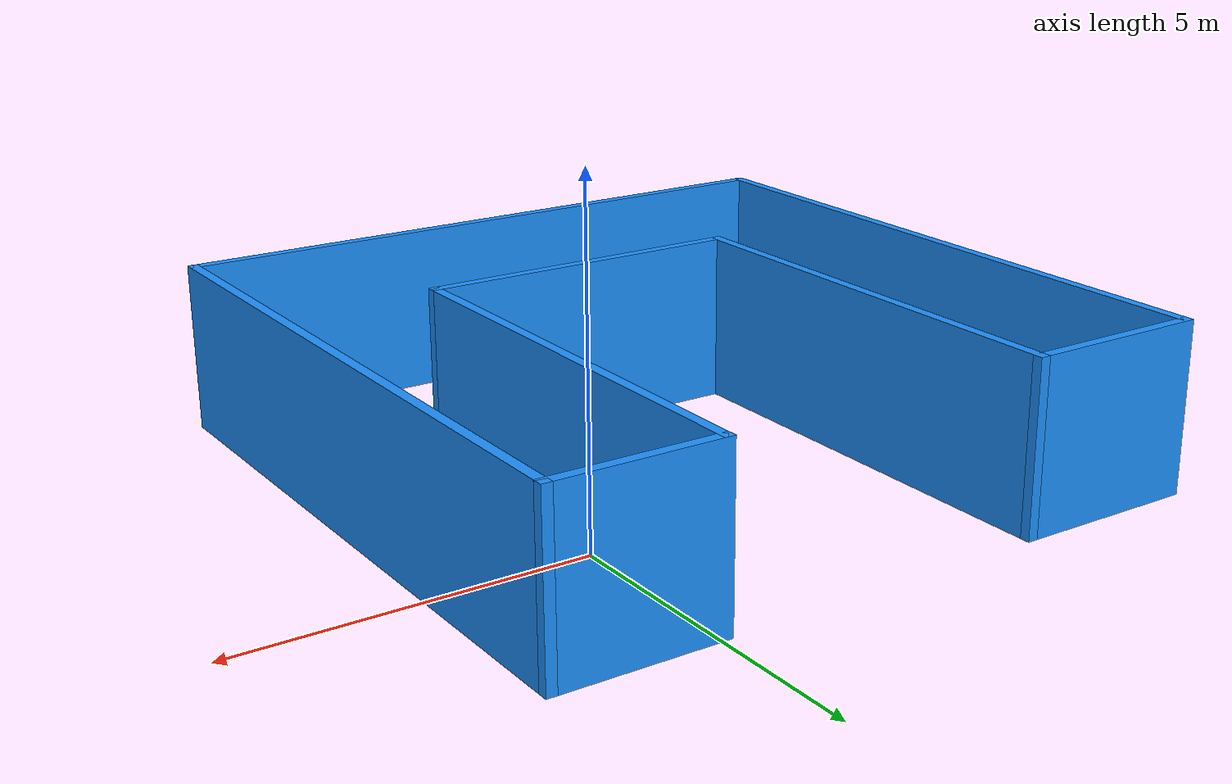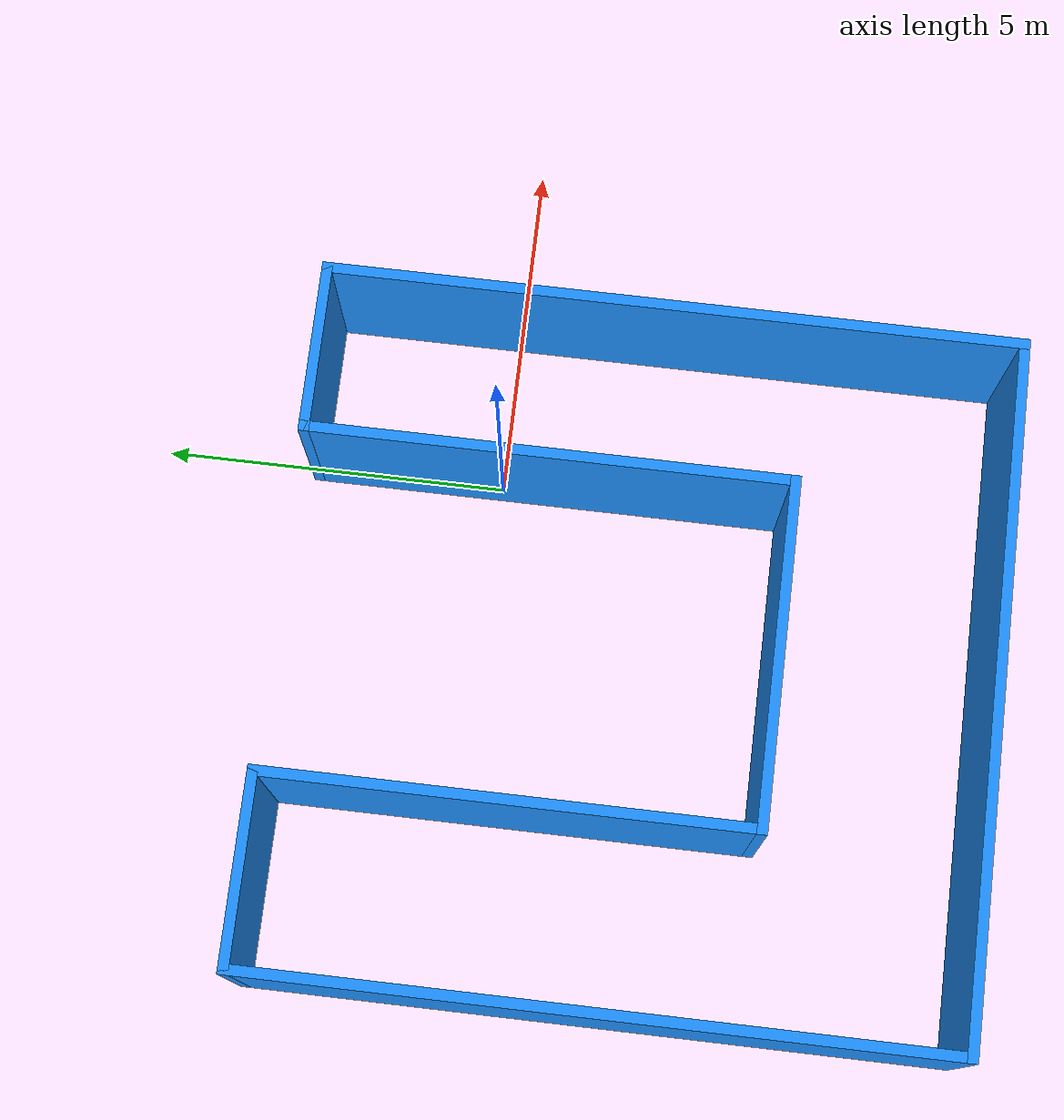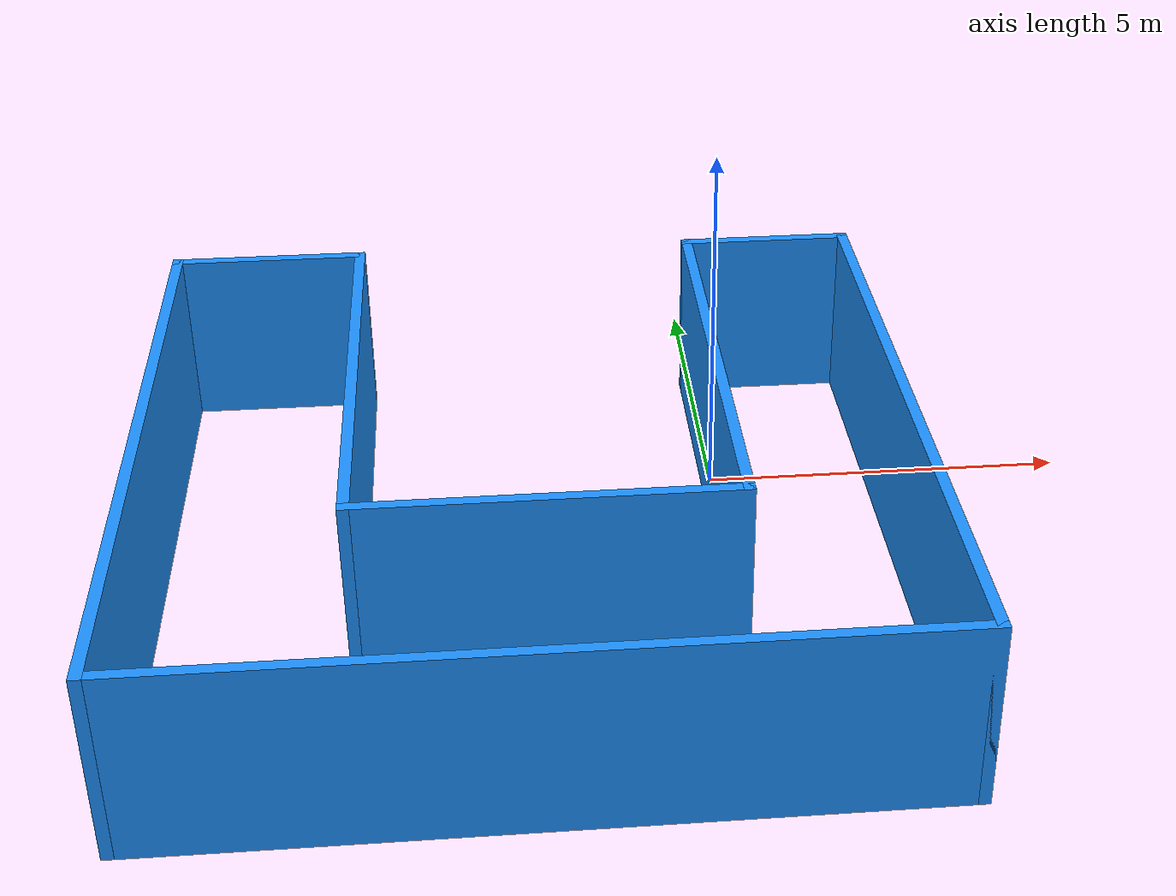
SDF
<?xml version='1.0'?>
<sdf version='1.6'>
  <model name='myBuilding'>
    <pose frame=''>-2.6475 -2.18542 0 0 -0 0</pose>
    <link name='Wall_10'>
      <collision name='Wall_10_Collision'>
        <geometry>
          <box>
            <size>2.5 0.15 2.5</size>
          </box>
        </geometry>
        <pose frame=''>0 0 1.25 0 -0 0</pose>
      </collision>
      <visual name='Wall_10_Visual'>
        <pose frame=''>0 0 1.25 0 -0 0</pose>
        <geometry>
          <box>
            <size>2.5 0.15 2.5</size>
          </box>
        </geometry>
        <material>
          <script>
            <uri>file://media/materials/scripts/gazebo.material</uri>
            <name>Gazebo/Grey</name>
          </script>
          <ambient>0.113725 0.572549 1 1</ambient>
        </material>
        <meta>
          <layer>0</layer>
        </meta>
      </visual>
      <pose frame=''>3.75 4.925 0 0 -0 3.14159</pose>
    </link>
    <link name='Wall_11'>
      <collision name='Wall_11_Collision'>
        <geometry>
          <box>
            <size>7 0.15 2.5</size>
          </box>
        </geometry>
        <pose frame=''>0 0 1.25 0 -0 0</pose>
      </collision>
      <visual name='Wall_11_Visual'>
        <pose frame=''>0 0 1.25 0 -0 0</pose>
        <geometry>
          <box>
            <size>7 0.15 2.5</size>
          </box>
        </geometry>
        <material>
          <script>
            <uri>file://media/materials/scripts/gazebo.material</uri>
            <name>Gazebo/Grey</name>
          </script>
          <ambient>0.113725 0.572549 1 1</ambient>
        </material>
        <meta>
          <layer>0</layer>
        </meta>
      </visual>
      <pose frame=''>2.575 1.5 0 0 0 -1.5708</pose>
    </link>
    <link name='Wall_12'>
      <collision name='Wall_12_Collision'>
        <geometry>
          <box>
            <size>5 0.15 2.5</size>
          </box>
        </geometry>
        <pose frame=''>0 0 1.25 0 -0 0</pose>
      </collision>
      <visual name='Wall_12_Visual'>
        <pose frame=''>0 0 1.25 0 -0 0</pose>
        <geometry>
          <box>
            <size>5 0.15 2.5</size>
          </box>
        </geometry>
        <material>
          <script>
            <uri>file://media/materials/scripts/gazebo.material</uri>
            <name>Gazebo/Grey</name>
          </script>
          <ambient>0.113725 0.572549 1 1</ambient>
        </material>
        <meta>
          <layer>0</layer>
        </meta>
      </visual>
      <pose frame=''>0.15 -1.925 0 0 -0 3.14159</pose>
    </link>
    <link name='Wall_13'>
      <collision name='Wall_13_Collision'>
        <geometry>
          <box>
            <size>7 0.15 2.5</size>
          </box>
        </geometry>
        <pose frame=''>0 0 1.25 0 -0 0</pose>
      </collision>
      <visual name='Wall_13_Visual'>
        <pose frame=''>0 0 1.25 0 -0 0</pose>
        <geometry>
          <box>
            <size>7 0.15 2.5</size>
          </box>
        </geometry>
        <material>
          <script>
            <uri>file://media/materials/scripts/gazebo.material</uri>
            <name>Gazebo/Grey</name>
          </script>
          <ambient>0.113725 0.572549 1 1</ambient>
        </material>
        <meta>
          <layer>0</layer>
        </meta>
      </visual>
      <pose frame=''>-2.275 1.5 0 0 -0 1.5708</pose>
    </link>
    <link name='Wall_14'>
      <collision name='Wall_14_Collision'>
        <geometry>
          <box>
            <size>2.8 0.15 2.5</size>
          </box>
        </geometry>
        <pose frame=''>0 0 1.25 0 -0 0</pose>
      </collision>
      <visual name='Wall_14_Visual'>
        <pose frame=''>0 0 1.25 0 -0 0</pose>
        <geometry>
          <box>
            <size>2.8 0.15 2.5</size>
          </box>
        </geometry>
        <material>
          <script>
            <uri>file://media/materials/scripts/gazebo.material</uri>
            <name>Gazebo/Grey</name>
          </script>
          <ambient>0.113725 0.572549 1 1</ambient>
        </material>
        <meta>
          <layer>0</layer>
        </meta>
      </visual>
      <pose frame=''>-3.6 4.925 0 0 -0 3.14159</pose>
    </link>
    <link name='Wall_7'>
      <collision name='Wall_7_Collision'>
        <geometry>
          <box>
            <size>10 0.15 2.5</size>
          </box>
        </geometry>
        <pose frame=''>0 0 1.25 0 -0 0</pose>
      </collision>
      <visual name='Wall_7_Visual'>
        <pose frame=''>0 0 1.25 0 -0 0</pose>
        <geometry>
          <box>
            <size>10 0.15 2.5</size>
          </box>
        </geometry>
        <material>
          <script>
            <uri>file://media/materials/scripts/gazebo.material</uri>
            <name>Gazebo/Grey</name>
          </script>
          <ambient>0.113725 0.572549 1 1</ambient>
        </material>
        <meta>
          <layer>0</layer>
        </meta>
      </visual>
      <pose frame=''>-4.925 0 0 0 0 -1.5708</pose>
    </link>
    <link name='Wall_8'>
      <collision name='Wall_8_Collision'>
        <geometry>
          <box>
            <size>10 0.15 2.5</size>
          </box>
        </geometry>
        <pose frame=''>0 0 1.25 0 -0 0</pose>
      </collision>
      <visual name='Wall_8_Visual'>
        <pose frame=''>0 0 1.25 0 -0 0</pose>
        <geometry>
          <box>
            <size>10 0.15 2.5</size>
          </box>
        </geometry>
        <material>
          <script>
            <uri>file://media/materials/scripts/gazebo.material</uri>
            <name>Gazebo/Grey</name>
          </script>
          <ambient>0.113725 0.572549 1 1</ambient>
        </material>
        <meta>
          <layer>0</layer>
        </meta>
      </visual>
      <pose frame=''>0 -4.925 0 0 -0 0</pose>
    </link>
    <link name='Wall_9'>
      <collision name='Wall_9_Collision'>
        <geometry>
          <box>
            <size>10 0.15 2.5</size>
          </box>
        </geometry>
        <pose frame=''>0 0 1.25 0 -0 0</pose>
      </collision>
      <visual name='Wall_9_Visual'>
        <pose frame=''>0 0 1.25 0 -0 0</pose>
        <geometry>
          <box>
            <size>10 0.15 2.5</size>
          </box>
        </geometry>
        <material>
          <script>
            <uri>file://media/materials/scripts/gazebo.material</uri>
            <name>Gazebo/Grey</name>
          </script>
          <ambient>0.113725 0.572549 1 1</ambient>
        </material>
        <meta>
          <layer>0</layer>
        </meta>
      </visual>
      <pose frame=''>4.925 0 0 0 -0 1.5708</pose>
    </link>
    <static>1</static>
  </model>
</sdf>
